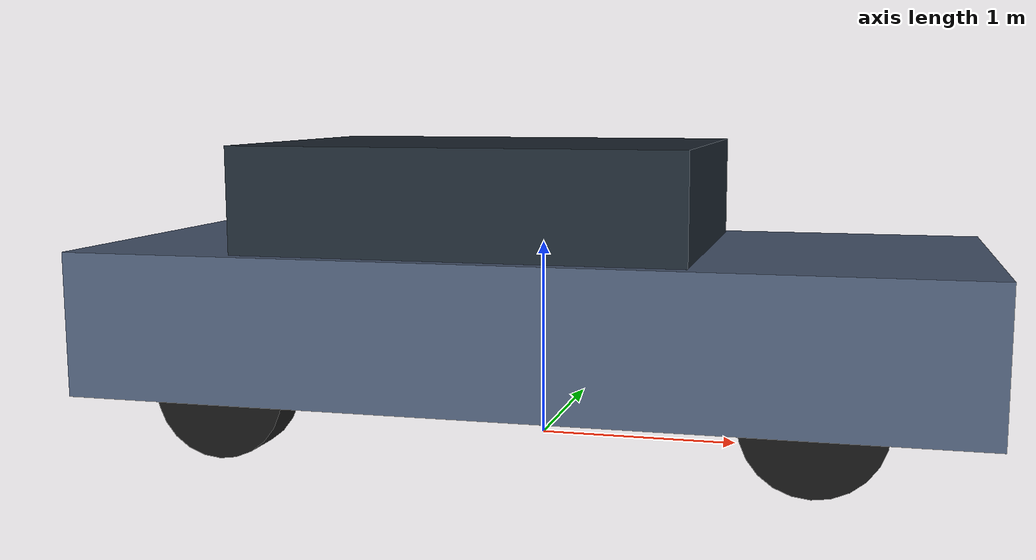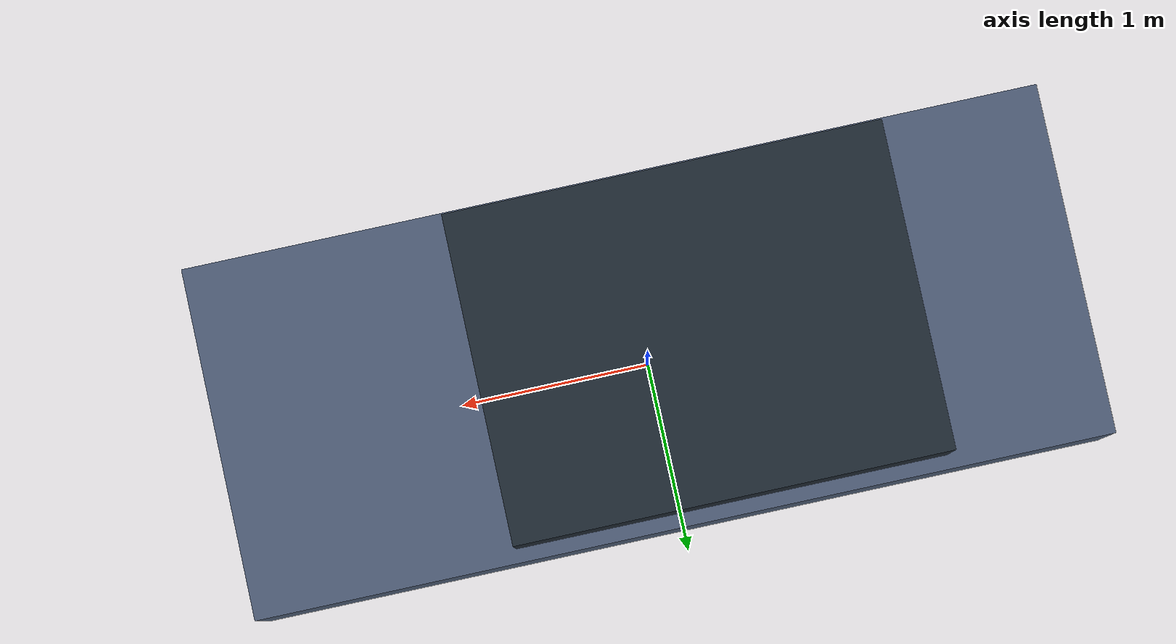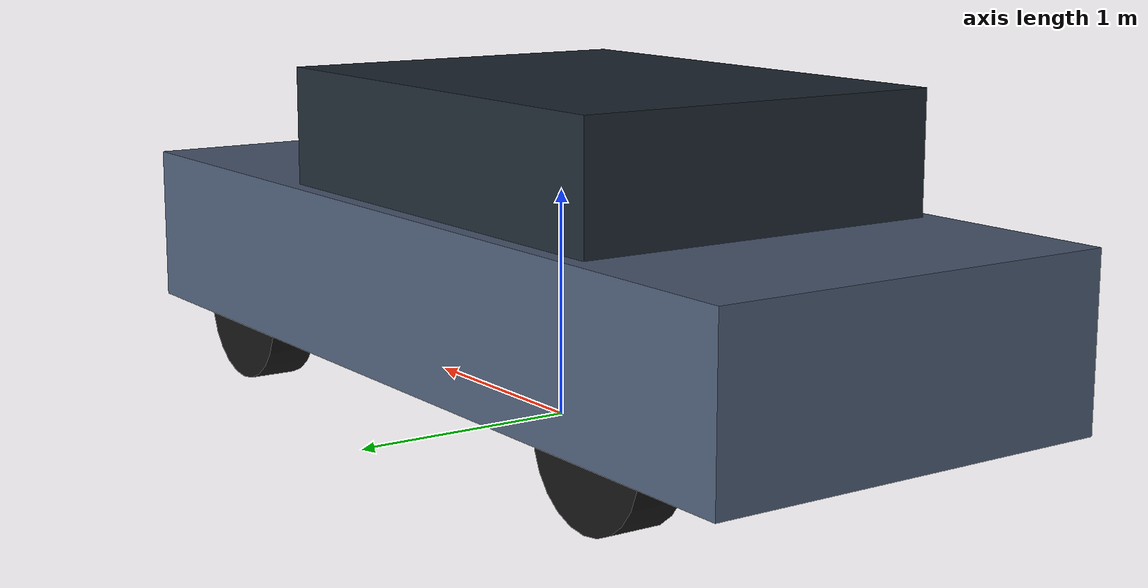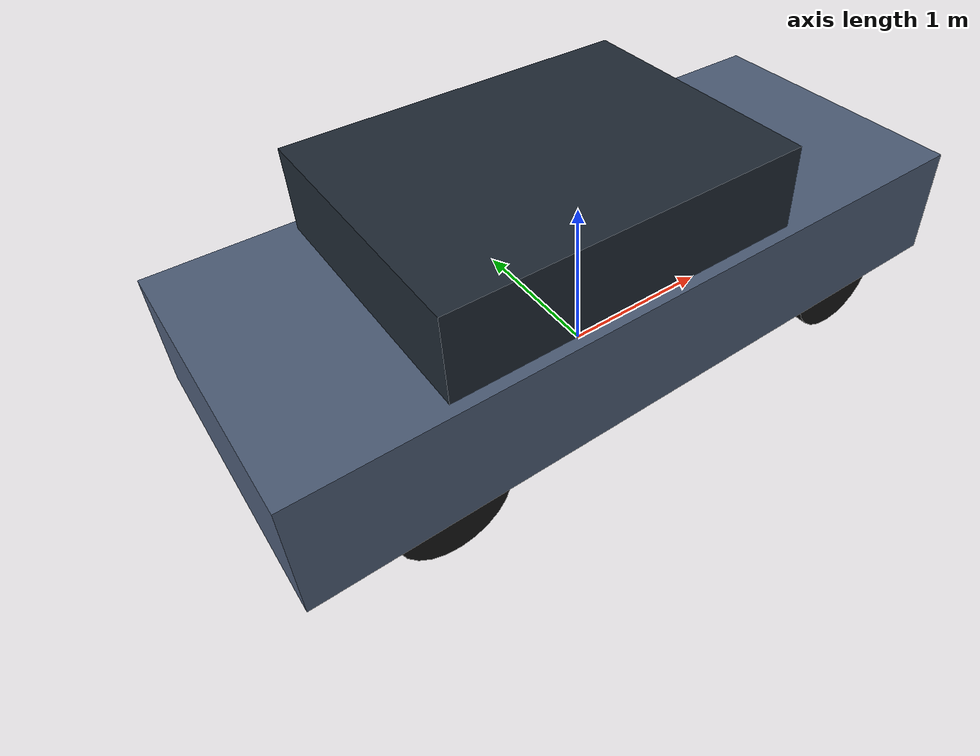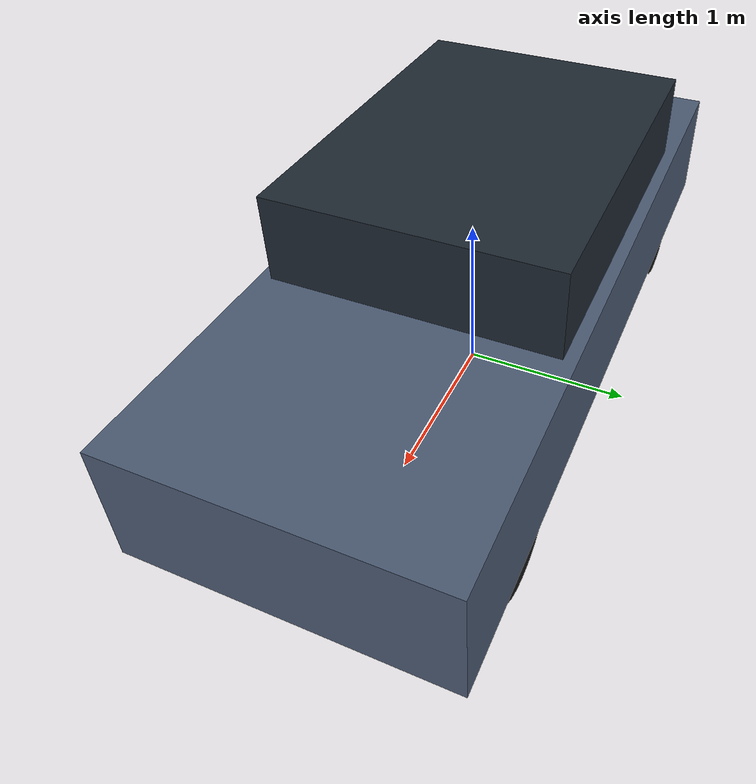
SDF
<?xml version='1.0' ?>
<!-- 정적 주차 차량 (4.40 x 1.80 x 1.45 m). 원점 = 차량 중심, +X = 앞머리 -->
<sdf version='1.10'>
  <model name='parked_car'>
    <static>true</static>
    <link name='link'>
      <collision name='body_col'>
        <pose>0 0 0.63 0 0 0</pose>
        <geometry><box><size>4.4000 1.8000 0.7200</size></box></geometry>
      </collision>
      <visual name='body_vis'>
        <pose>0 0 0.63 0 0 0</pose>
        <geometry><box><size>4.4000 1.8000 0.7200</size></box></geometry>
        <material>
          <ambient>0.10 0.12 0.16 1</ambient>
          <diffuse>0.30 0.36 0.46 1</diffuse>
          <specular>0.1 0.1 0.1 1</specular>
        </material>
      </visual>

      <collision name='cabin_col'>
        <pose>-0.25 0 1.25 0 0 0</pose>
        <geometry><box><size>2.2000 1.6560 0.5200</size></box></geometry>
      </collision>
      <visual name='cabin_vis'>
        <pose>-0.25 0 1.25 0 0 0</pose>
        <geometry><box><size>2.2000 1.6560 0.5200</size></box></geometry>
        <material>
          <ambient>0.06 0.08 0.10 1</ambient>
          <diffuse>0.12 0.16 0.20 1</diffuse>
          <specular>0.3 0.3 0.3 1</specular>
        </material>
      </visual>

      <collision name='w_fl_col'>
        <pose>1.408 0.756 0.33 1.5708 0 0</pose>
        <geometry><cylinder><radius>0.33</radius><length>0.22</length></cylinder></geometry>
      </collision>
      <visual name='w_fl_vis'>
        <pose>1.408 0.756 0.33 1.5708 0 0</pose>
        <geometry><cylinder><radius>0.33</radius><length>0.22</length></cylinder></geometry>
        <material><ambient>0.03 0.03 0.03 1</ambient><diffuse>0.08 0.08 0.08 1</diffuse></material>
      </visual>
      <collision name='w_fr_col'>
        <pose>1.408 -0.756 0.33 1.5708 0 0</pose>
        <geometry><cylinder><radius>0.33</radius><length>0.22</length></cylinder></geometry>
      </collision>
      <visual name='w_fr_vis'>
        <pose>1.408 -0.756 0.33 1.5708 0 0</pose>
        <geometry><cylinder><radius>0.33</radius><length>0.22</length></cylinder></geometry>
        <material><ambient>0.03 0.03 0.03 1</ambient><diffuse>0.08 0.08 0.08 1</diffuse></material>
      </visual>
      <collision name='w_rl_col'>
        <pose>-1.408 0.756 0.33 1.5708 0 0</pose>
        <geometry><cylinder><radius>0.33</radius><length>0.22</length></cylinder></geometry>
      </collision>
      <visual name='w_rl_vis'>
        <pose>-1.408 0.756 0.33 1.5708 0 0</pose>
        <geometry><cylinder><radius>0.33</radius><length>0.22</length></cylinder></geometry>
        <material><ambient>0.03 0.03 0.03 1</ambient><diffuse>0.08 0.08 0.08 1</diffuse></material>
      </visual>
      <collision name='w_rr_col'>
        <pose>-1.408 -0.756 0.33 1.5708 0 0</pose>
        <geometry><cylinder><radius>0.33</radius><length>0.22</length></cylinder></geometry>
      </collision>
      <visual name='w_rr_vis'>
        <pose>-1.408 -0.756 0.33 1.5708 0 0</pose>
        <geometry><cylinder><radius>0.33</radius><length>0.22</length></cylinder></geometry>
        <material><ambient>0.03 0.03 0.03 1</ambient><diffuse>0.08 0.08 0.08 1</diffuse></material>
      </visual>
    </link>
  </model>
</sdf>
